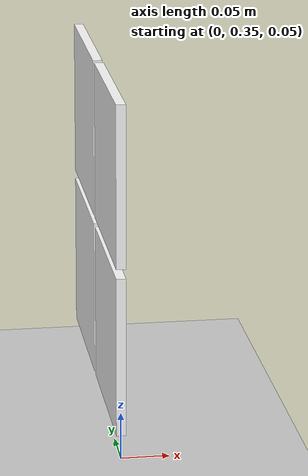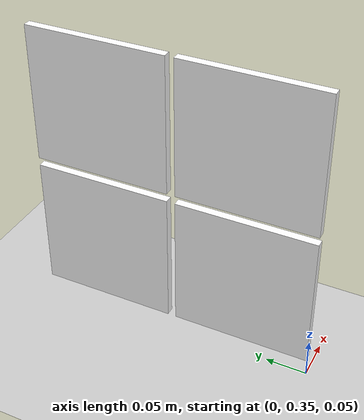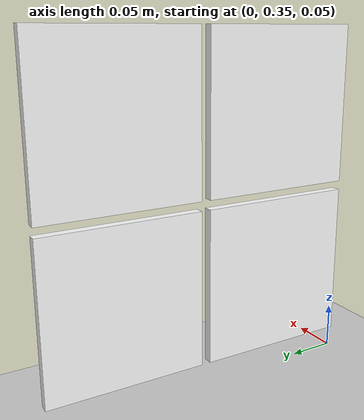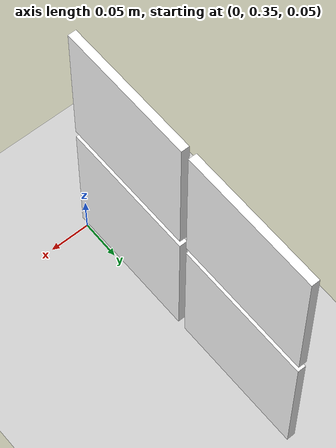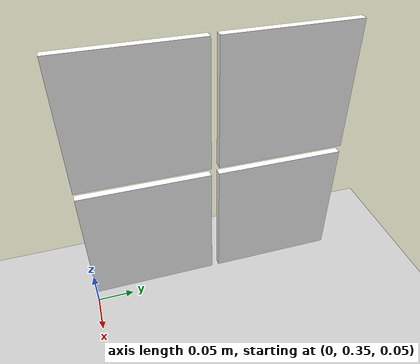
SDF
<sdf version="1.4">
 <world name="arena">
  <include><uri>model://sun</uri></include>
  <include><uri>model://ground_plane</uri></include>
  <include><uri>model://apriltag_board</uri><pose>0.00 0.435 0.34 0 1.57 0</pose></include>
  <physics type="ode">
   <max_step_size>0.01</max_step_size>
   <real_time_factor>1</real_time_factor>
   <real_time_update_rate>100</real_time_update_rate>
   <gravity>0 0 -9.81</gravity>
  </physics>
 </world>
</sdf>

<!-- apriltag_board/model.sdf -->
<sdf version='1.7'>
  <model name='apriltag_board'>
    <link name='tag_0'>
      <pose>0 0 0 0 -0 0</pose>
      <visual name='main_Visual'>
      <pose>0 0 0 0 0 3.14159</pose>
        <geometry>
          <box>
            <size>0.17 0.17 0.01</size>
          </box>
        </geometry>
        <material>
          <ambient>1 1 1 1</ambient>
          <diffuse>1 1 1 1</diffuse>
          <specular>0.1 0.1 0.1 1</specular>
          <pbr>
            <metal>
              <albedo_map>model://Apriltag36_11_00000/materials/textures/tag36_11_00000.png</albedo_map>
              <roughness>0.9</roughness>
              <metalness>0</metalness>
            </metal>
          </pbr>
          <script>
            <uri>model://Apriltag36_11_00000/materials/scripts</uri>
            <uri>model://Apriltag36_11_00000/materials/textures</uri>
            <name>Apriltag36_11_00000</name>
          </script>
        </material>
      </visual>
      <self_collide>0</self_collide>
      <enable_wind>0</enable_wind>
      <kinematic>0</kinematic>
    </link>
    <link name='tag_1'>
      <pose>0.18 0 0 0 -0 0</pose>
      <visual name='main_Visual'>
      <pose>0 0 0 0 0 3.14159</pose>
        <geometry>
          <box>
            <size>0.17 0.17 0.01</size>
          </box>
        </geometry>
        <material>
          <ambient>1 1 1 1</ambient>
          <diffuse>1 1 1 1</diffuse>
          <specular>0.1 0.1 0.1 1</specular>
          <pbr>
            <metal>
              <albedo_map>model://Apriltag36_11_00001/materials/textures/tag36_11_00001.png</albedo_map>
              <roughness>0.9</roughness>
              <metalness>0</metalness>
            </metal>
          </pbr>
          <script>
            <uri>model://Apriltag36_11_00001/materials/scripts</uri>
            <uri>model://Apriltag36_11_00001/materials/textures</uri>
            <name>Apriltag36_11_00001</name>
          </script>
        </material>
      </visual>
      <self_collide>0</self_collide>
      <enable_wind>0</enable_wind>
      <kinematic>0</kinematic>
    </link>
    <link name='tag_2'>
      <pose>0.18 0.18 0 0 -0 0</pose>
      <visual name='main_Visual'>
      <pose>0 0 0 0 0 3.14159</pose>
        <geometry>
          <box>
            <size>0.17 0.17 0.01</size>
          </box>
        </geometry>
        <material>
          <ambient>1 1 1 1</ambient>
          <diffuse>1 1 1 1</diffuse>
          <specular>0.1 0.1 0.1 1</specular>
          <pbr>
            <metal>
              <albedo_map>model://Apriltag36_11_00002/materials/textures/tag36_11_00002.png</albedo_map>
              <roughness>0.9</roughness>
              <metalness>0</metalness>
            </metal>
          </pbr>
          <script>
            <uri>model://Apriltag36_11_00002/materials/scripts</uri>
            <uri>model://Apriltag36_11_00002/materials/textures</uri>
            <name>Apriltag36_11_00002</name>
          </script>
        </material>
      </visual>
      <self_collide>0</self_collide>
      <enable_wind>0</enable_wind>
      <kinematic>0</kinematic>
    </link>
    <link name='tag_3'>
      <pose>0 0.18 0 0 -0 0</pose>
      <visual name='main_Visual'>
      <pose>0 0 0 0 0 3.14159</pose>
        <geometry>
          <box>
            <size>0.17 0.17 0.01</size>
          </box>
        </geometry>
        <material>
          <ambient>1 1 1 1</ambient>
          <diffuse>1 1 1 1</diffuse>
          <specular>0.1 0.1 0.1 1</specular>
          <pbr>
            <metal>
              <albedo_map>model://Apriltag36_11_00003/materials/textures/tag36_11_00003.png</albedo_map>
              <roughness>0.9</roughness>
              <metalness>0</metalness>
            </metal>
          </pbr>
          <script>
            <uri>model://Apriltag36_11_00003/materials/scripts</uri>
            <uri>model://Apriltag36_11_00003/materials/textures</uri>
            <name>Apriltag36_11_00003</name>
          </script>
        </material>
      </visual>
      <self_collide>0</self_collide>
      <enable_wind>0</enable_wind>
      <kinematic>0</kinematic>
    </link>
    <static>1</static>
  </model>
</sdf>
